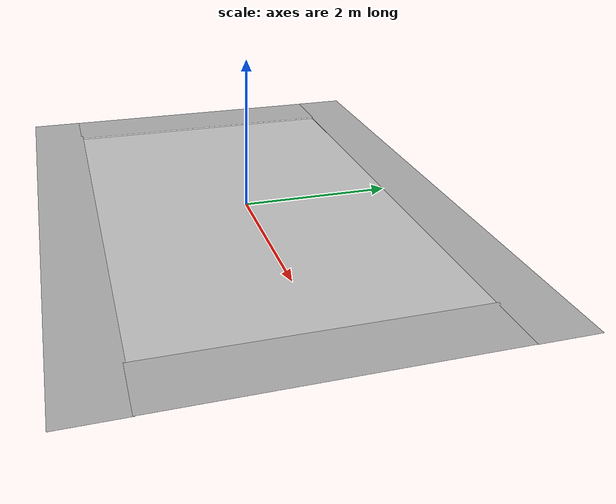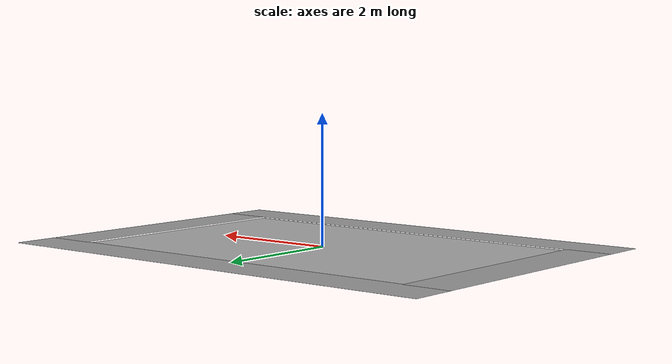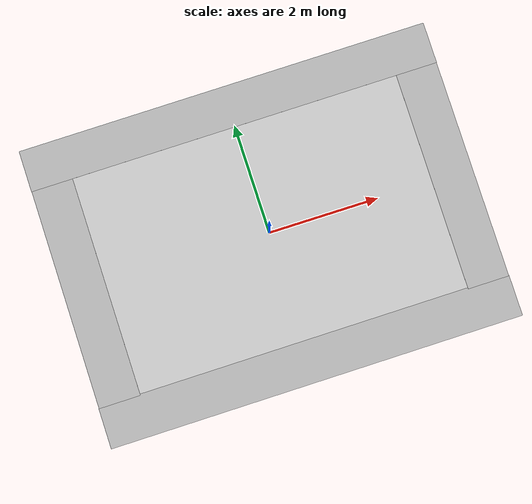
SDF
<?xml version="1.0" ?>
<sdf version="1.4">
  <model name="RoboCup15_MSL_Field">
    <static>true</static>

    <link name="chassis">
      <pose>0 0 0.01 0 0 0</pose>
      <collision name="collision">
        <geometry>
          <plane>
            <normal>0 0 1</normal>
            <size>6 4</size>
          </plane>
        </geometry>
        <surface>
          <friction>
            <ode>
              <mu>50</mu>
              <mu2>25</mu2>
            </ode>
          </friction>
        </surface>
      </collision>

      <visual name="carpet">
        <cast_shadows>false</cast_shadows>
        <geometry>
          <plane>
            <normal>0 0 1</normal>
            <size>6 4</size>
          </plane>
        </geometry>
        <material>
          <script>
            <uri>file:///home/nullbyte/Desktop/myGit/catkin_ws/src/deepsoccer/deepsoccer_gazebo/materials/scripts/</uri>
            <uri>file:///home/nullbyte/Desktop/myGit/catkin_ws/src/deepsoccer/deepsoccer_gazebo/materials/textures/</uri>
            <name>RoboCup/Carpet</name>
          </script>
        </material>
      </visual>

       <visual name="base1">
        <pose>0 2.35 0.01 0 0 0</pose>
        <cast_shadows>false</cast_shadows>
        <geometry>
          <plane>
            <normal>0 0 1</normal>
            <size>7.5 0.75</size>
          </plane>
        </geometry>
        <material>
          <script>
            <uri>file:///home/nullbyte/Desktop/myGit/catkin_ws/src/deepsoccer/deepsoccer_gazebo/materials/scripts/</uri>
            <uri>file:///home/nullbyte/Desktop/myGit/catkin_ws/src/deepsoccer/deepsoccer_gazebo/materials/textures/</uri>
            <name>RoboCup/FieldBorder</name>
          </script>
        </material>
      </visual>
      <visual name="base2">
        <pose>0 -2.35 0.01 0 0 0</pose>
        <cast_shadows>false</cast_shadows>
        <geometry>
          <plane>
            <normal>0 0 1</normal>
            <size>7.5 0.75</size>
          </plane>
        </geometry>
        <material>
          <script>
            <uri>file:///home/nullbyte/Desktop/myGit/catkin_ws/src/deepsoccer/deepsoccer_gazebo/materials/scripts/</uri>
            <uri>file:///home/nullbyte/Desktop/myGit/catkin_ws/src/deepsoccer/deepsoccer_gazebo/materials/textures/</uri>
            <name>RoboCup/FieldBorder</name>
          </script>
        </material>
      </visual>
      <visual name="base3">
        <pose>3.37 0 0.01 0 0 0</pose>
        <cast_shadows>false</cast_shadows>
        <geometry>
          <plane>
            <normal>0 0 1</normal>
            <size>0.75 4.0</size>
          </plane>
        </geometry>
        <material>
          <script>
            <uri>file:///home/nullbyte/Desktop/myGit/catkin_ws/src/deepsoccer/deepsoccer_gazebo/materials/scripts/</uri>
            <uri>file:///home/nullbyte/Desktop/myGit/catkin_ws/src/deepsoccer/deepsoccer_gazebo/materials/textures/</uri>
            <name>RoboCup/FieldBorder</name>
          </script>
        </material>
      </visual>
      <visual name="base4">
        <pose>-3.37 0 0.01 0 0 0</pose>
        <cast_shadows>false</cast_shadows>
        <geometry>
          <plane>
            <normal>0 0 1</normal>
            <size>0.75 4.0</size>
          </plane>
        </geometry>
        <material>
          <script>
            <uri>file:///home/nullbyte/Desktop/myGit/catkin_ws/src/deepsoccer/deepsoccer_gazebo/materials/scripts/</uri>
            <uri>file:///home/nullbyte/Desktop/myGit/catkin_ws/src/deepsoccer/deepsoccer_gazebo/materials/textures/</uri>
            <name>RoboCup/FieldBorder</name>
          </script>
        </material>
      </visual>
    </link>

  </model>
</sdf>
